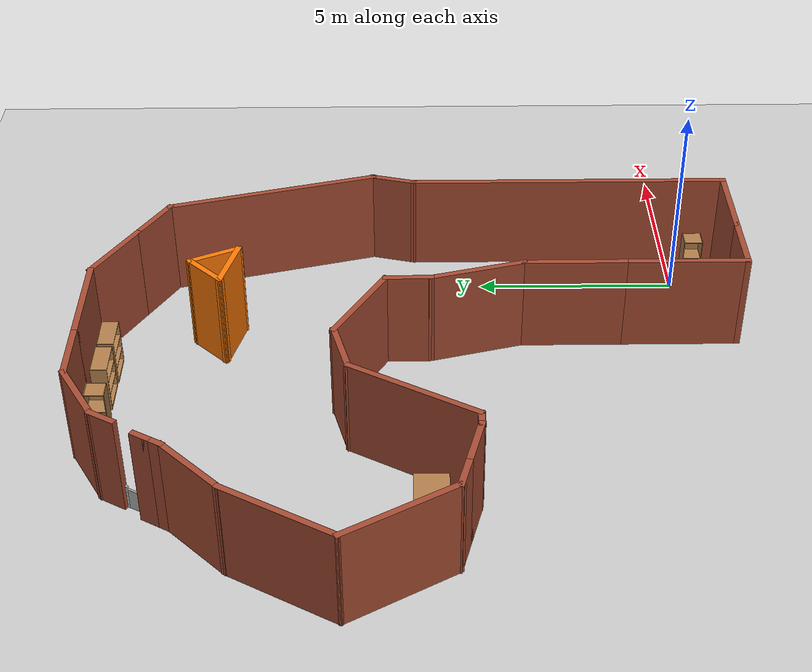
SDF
<sdf version="1.7">
 <world name="default">
  <light name="sun" type="directional">
   <pose>0 0 10 0 -0 0</pose>
   <diffuse>0.8 0.8 0.8 1</diffuse>
   <specular>0.2 0.2 0.2 1</specular>
   <attenuation>
    <range>1000</range>
    <constant>0.9</constant>
    <linear>0.01</linear>
    <quadratic>0.001</quadratic>
   </attenuation>
   <direction>-0.5 0.1 -0.9</direction>
   <spot><inner_angle>0</inner_angle><outer_angle>0</outer_angle><falloff>0</falloff></spot>
  </light>
  <model name="ground_plane">
   <static>1</static>
   <link name="link">
    <collision name="collision">
     <geometry><plane><normal>0 0 1</normal><size>100 100</size></plane></geometry>
     <surface>
      <contact><collide_bitmask>65535</collide_bitmask></contact>
      <friction><ode><mu>100</mu><mu2>50</mu2></ode></friction>
     </surface>
    </collision>
    <visual name="visual">
     <cast_shadows>0</cast_shadows>
     <geometry><plane><normal>0 0 1</normal><size>100 100</size></plane></geometry>
     <material>
      <script><uri>file://media/materials/scripts/gazebo.material</uri><name>Gazebo/Grey</name></script>
     </material>
    </visual>
   </link>
  </model>
  <physics type="ode">
   <real_time_update_rate>1000</real_time_update_rate>
   <max_step_size>0.001</max_step_size>
   <real_time_factor>1</real_time_factor>
   <ode>
    <solver>
     <type>quick</type>
     <iters>150</iters>
     <precon_iters>0</precon_iters>
     <sor>1.4</sor>
     <use_dynamic_moi_rescaling>1</use_dynamic_moi_rescaling>
    </solver>
    <constraints>
     <cfm>1e-05</cfm>
     <erp>0.2</erp>
     <contact_max_correcting_vel>2000</contact_max_correcting_vel>
     <contact_surface_layer>0.01</contact_surface_layer>
    </constraints>
   </ode>
  </physics>
  <scene><ambient>0.4 0.4 0.4 1</ambient><background>0.7 0.7 0.7 1</background><shadows>0</shadows></scene>
  <gravity>0 0 -9.8</gravity>
  <magnetic_field>6e-06 2.3e-05 -4.2e-05</magnetic_field>
  <atmosphere type="adiabatic"/>
  <spherical_coordinates>
   <surface_model>EARTH_WGS84</surface_model>
   <latitude_deg>0</latitude_deg>
   <longitude_deg>0</longitude_deg>
   <elevation>0</elevation>
   <heading_deg>0</heading_deg>
  </spherical_coordinates>
  <model name="questionMark-shaped-room">
   <pose>-5.10684 7.33446 0 0 -0 0</pose>
   <link name="Wall_0">
    <collision name="Wall_0_Collision">
     <geometry><box><size>0.75 0.15 2.5</size></box></geometry>
     <pose>0 0 1.25 0 -0 0</pose>
    </collision>
    <visual name="Wall_0_Visual">
     <pose>0 0 1.25 0 -0 0</pose>
     <geometry><box><size>0.75 0.15 2.5</size></box></geometry>
     <material>
      <script><uri>file://media/materials/scripts/gazebo.material</uri><name>Gazebo/Bricks</name></script>
      <ambient>1 1 1 1</ambient>
     </material>
     <meta><layer>0</layer></meta>
    </visual>
    <pose>-3.00348 6.18761 0 0 -0 1.0472</pose>
   </link>
   <link name="Wall_1">
    <collision name="Wall_1_Collision">
     <geometry><box><size>1.75 0.15 2.5</size></box></geometry>
     <pose>0 0 1.25 0 -0 0</pose>
    </collision>
    <visual name="Wall_1_Visual">
     <pose>0 0 1.25 0 -0 0</pose>
     <geometry><box><size>1.75 0.15 2.5</size></box></geometry>
     <material>
      <script><uri>file://media/materials/scripts/gazebo.material</uri><name>Gazebo/Bricks</name></script>
      <ambient>1 1 1 1</ambient>
     </material>
     <meta><layer>0</layer></meta>
    </visual>
    <pose>-2.16066 6.84742 0 0 -0 0.523599</pose>
   </link>
   <link name="Wall_10">
    <collision name="Wall_10_Collision">
     <geometry><box><size>1.75 0.15 2.5</size></box></geometry>
     <pose>0 0 1.25 0 -0 0</pose>
    </collision>
    <visual name="Wall_10_Visual">
     <pose>0 0 1.25 0 -0 0</pose>
     <geometry><box><size>1.75 0.15 2.5</size></box></geometry>
     <material>
      <script><uri>file://media/materials/scripts/gazebo.material</uri><name>Gazebo/Bricks</name></script>
      <ambient>1 1 1 1</ambient>
     </material>
     <meta><layer>0</layer></meta>
    </visual>
    <pose>3.45342 -8.6828 0 0 -0 3.14159</pose>
   </link>
   <link name="Wall_11">
    <collision name="Wall_11_Collision">
     <geometry><box><size>3 0.15 2.5</size></box></geometry>
     <pose>0 0 1.25 0 -0 0</pose>
    </collision>
    <visual name="Wall_11_Visual">
     <pose>0 0 1.25 0 -0 0</pose>
     <geometry><box><size>3 0.15 2.5</size></box></geometry>
     <material>
      <script><uri>file://media/materials/scripts/gazebo.material</uri><name>Gazebo/Bricks</name></script>
      <ambient>1 1 1 1</ambient>
     </material>
     <meta><layer>0</layer></meta>
    </visual>
    <pose>2.65342 -7.2578 0 0 -0 1.5708</pose>
   </link>
   <link name="Wall_12">
    <collision name="Wall_12_Collision">
     <geometry><box><size>2.75 0.15 2.5</size></box></geometry>
     <pose>0 0 1.25 0 -0 0</pose>
    </collision>
    <visual name="Wall_12_Visual">
     <pose>0 0 1.25 0 -0 0</pose>
     <geometry><box><size>2.75 0.15 2.5</size></box></geometry>
     <material>
      <script><uri>file://media/materials/scripts/gazebo.material</uri><name>Gazebo/Bricks</name></script>
      <ambient>1 1 1 1</ambient>
     </material>
     <meta><layer>0</layer></meta>
    </visual>
    <pose>2.65342 -4.5328 0 0 -0 1.5708</pose>
   </link>
   <link name="Wall_13">
    <collision name="Wall_13_Collision">
     <geometry><box><size>2.5 0.15 2.5</size></box></geometry>
     <pose>0 0 1.25 0 -0 0</pose>
    </collision>
    <visual name="Wall_13_Visual">
     <pose>0 0 1.25 0 -0 0</pose>
     <geometry><box><size>2.5 0.15 2.5</size></box></geometry>
     <material>
      <script><uri>file://media/materials/scripts/gazebo.material</uri><name>Gazebo/Bricks</name></script>
      <ambient>1 1 1 1</ambient>
     </material>
     <meta><layer>0</layer></meta>
    </visual>
    <pose>2.34931 -2.09784 0 0 -0 1.8326</pose>
   </link>
   <link name="Wall_14">
    <collision name="Wall_14_Collision">
     <geometry><box><size>1.25 0.15 2.5</size></box></geometry>
     <pose>0 0 1.25 0 -0 0</pose>
    </collision>
    <visual name="Wall_14_Visual">
     <pose>0 0 1.25 0 -0 0</pose>
     <geometry><box><size>1.25 0.15 2.5</size></box></geometry>
     <material>
      <script><uri>file://media/materials/scripts/gazebo.material</uri><name>Gazebo/Bricks</name></script>
      <ambient>1 1 1 1</ambient>
     </material>
     <meta><layer>0</layer></meta>
    </visual>
    <pose>2.04519 -0.412877 0 0 -0 1.5708</pose>
   </link>
   <link name="Wall_15">
    <collision name="Wall_15_Collision">
     <geometry><box><size>2.5 0.15 2.5</size></box></geometry>
     <pose>0 0 1.25 0 -0 0</pose>
    </collision>
    <visual name="Wall_15_Visual">
     <pose>0 0 1.25 0 -0 0</pose>
     <geometry><box><size>2.5 0.15 2.5</size></box></geometry>
     <material>
      <script><uri>file://media/materials/scripts/gazebo.material</uri><name>Gazebo/Bricks</name></script>
      <ambient>1 1 1 1</ambient>
     </material>
     <meta><layer>0</layer></meta>
    </visual>
    <pose>1.02761 0.724624 0 0 -0 2.61799</pose>
   </link>
   <link name="Wall_16">
    <collision name="Wall_16_Collision">
     <geometry><box><size>1.5 0.15 2.5</size></box></geometry>
     <pose>0 0 1.25 0 -0 0</pose>
    </collision>
    <visual name="Wall_16_Visual">
     <pose>0 0 1.25 0 -0 0</pose>
     <geometry><box><size>1.5 0.15 2.5</size></box></geometry>
     <material>
      <script><uri>file://media/materials/scripts/gazebo.material</uri><name>Gazebo/Bricks</name></script>
      <ambient>1 1 1 1</ambient>
     </material>
     <meta><layer>0</layer></meta>
    </visual>
    <pose>-0.641967 1.13742 0 0 -0 -2.87979</pose>
   </link>
   <link name="Wall_17">
    <collision name="Wall_17_Collision">
     <geometry><box><size>3.5 0.15 2.5</size></box></geometry>
     <pose>0 0 1.25 0 -0 0</pose>
    </collision>
    <visual name="Wall_17_Visual">
     <pose>0 0 1.25 0 -0 0</pose>
     <geometry><box><size>3.5 0.15 2.5</size></box></geometry>
     <material>
      <script><uri>file://media/materials/scripts/gazebo.material</uri><name>Gazebo/Bricks</name></script>
      <ambient>1 1 1 1</ambient>
     </material>
     <meta><layer>0</layer></meta>
    </visual>
    <pose>-2.13147 -0.487875 0 0 -0 -2.0944</pose>
   </link>
   <link name="Wall_18">
    <collision name="Wall_18_Collision">
     <geometry><box><size>0.5 0.15 2.5</size></box></geometry>
     <pose>0 0 1.25 0 -0 0</pose>
    </collision>
    <visual name="Wall_18_Visual">
     <pose>0 0 1.25 0 -0 0</pose>
     <geometry><box><size>0.5 0.15 2.5</size></box></geometry>
     <material>
      <script><uri>file://media/materials/scripts/gazebo.material</uri><name>Gazebo/Bricks</name></script>
      <ambient>1 1 1 1</ambient>
     </material>
     <meta><layer>0</layer></meta>
    </visual>
    <pose>-3.14397 -1.93847 0 0 -0 3.14159</pose>
   </link>
   <link name="Wall_19">
    <collision name="Wall_19_Collision">
     <geometry><box><size>1.25 0.15 2.5</size></box></geometry>
     <pose>0 0 1.25 0 -0 0</pose>
    </collision>
    <visual name="Wall_19_Visual">
     <pose>0 0 1.25 0 -0 0</pose>
     <geometry><box><size>1.25 0.15 2.5</size></box></geometry>
     <material>
      <script><uri>file://media/materials/scripts/gazebo.material</uri><name>Gazebo/Bricks</name></script>
      <ambient>1 1 1 1</ambient>
     </material>
     <meta><layer>0</layer></meta>
    </visual>
    <pose>-3.85023 -1.79612 0 0 -0 2.87979</pose>
   </link>
   <link name="Wall_2">
    <collision name="Wall_2_Collision">
     <geometry><box><size>1.75 0.15 2.5</size></box></geometry>
     <pose>0 0 1.25 0 -0 0</pose>
    </collision>
    <visual name="Wall_2_Visual">
     <pose>0 0 1.25 0 -0 0</pose>
     <geometry><box><size>1.75 0.15 2.5</size></box></geometry>
     <material>
      <script><uri>file://media/materials/scripts/gazebo.material</uri><name>Gazebo/Bricks</name></script>
      <ambient>1 1 1 1</ambient>
     </material>
     <meta><layer>0</layer></meta>
    </visual>
    <pose>-0.667845 7.24742 0 0 -0 0</pose>
   </link>
   <link name="Wall_20">
    <collision name="Wall_20_Collision">
     <geometry><box><size>1 0.15 2.5</size></box></geometry>
     <pose>0 0 1.25 0 -0 0</pose>
    </collision>
    <visual name="Wall_20_Visual">
     <pose>0 0 1.25 0 -0 0</pose>
     <geometry><box><size>1 0.15 2.5</size></box></geometry>
     <material>
      <script><uri>file://media/materials/scripts/gazebo.material</uri><name>Gazebo/Bricks</name></script>
      <ambient>1 1 1 1</ambient>
     </material>
     <meta><layer>0</layer></meta>
    </visual>
    <pose>-4.792 -1.54377 0 0 -0 2.87979</pose>
   </link>
   <link name="Wall_21">
    <collision name="Wall_21_Collision">
     <geometry><box><size>3 0.15 2.5</size></box></geometry>
     <pose>0 0 1.25 0 -0 0</pose>
    </collision>
    <visual name="Wall_21_Visual">
     <pose>0 0 1.25 0 -0 0</pose>
     <geometry><box><size>3 0.15 2.5</size></box></geometry>
     <material>
      <script><uri>file://media/materials/scripts/gazebo.material</uri><name>Gazebo/Bricks</name></script>
      <ambient>1 1 1 1</ambient>
     </material>
     <meta><layer>0</layer></meta>
    </visual>
    <pose>-5.91502 -0.199684 0 0 -0 2.0944</pose>
   </link>
   <link name="Wall_22">
    <collision name="Wall_22_Collision">
     <geometry><box><size>3 0.15 2.5</size></box></geometry>
     <pose>0 0 1.25 0 -0 0</pose>
    </collision>
    <visual name="Wall_22_Visual">
     <pose>0 0 1.25 0 -0 0</pose>
     <geometry><box><size>3 0.15 2.5</size></box></geometry>
     <material>
      <script><uri>file://media/materials/scripts/gazebo.material</uri><name>Gazebo/Bricks</name></script>
      <ambient>1 1 1 1</ambient>
     </material>
     <meta><layer>0</layer></meta>
    </visual>
    <pose>-5.91502 2.26849 0 0 -0 1.0472</pose>
   </link>
   <link name="Wall_23">
    <collision name="Wall_23_Collision">
     <geometry><box><size>2 0.15 2.5</size></box></geometry>
     <pose>0 0 1.25 0 -0 0</pose>
    </collision>
    <visual name="Wall_23_Visual">
     <pose>0 0 1.25 0 -0 0</pose>
     <geometry><box><size>2 0.15 2.5</size></box></geometry>
     <material>
      <script><uri>file://media/materials/scripts/gazebo.material</uri><name>Gazebo/Bricks</name></script>
      <ambient>1 1 1 1</ambient>
     </material>
     <meta><layer>0</layer></meta>
    </visual>
    <pose>-4.54845 4.15665 0 0 -0 0.785398</pose>
   </link>
   <link name="Wall_24">
    <collision name="Wall_24_Collision">
     <geometry><box><size>0.5 0.15 2.5</size></box></geometry>
     <pose>0 0 1.25 0 -0 0</pose>
    </collision>
    <visual name="Wall_24_Visual">
     <pose>0 0 1.25 0 -0 0</pose>
     <geometry><box><size>0.5 0.15 2.5</size></box></geometry>
     <material>
      <script><uri>file://media/materials/scripts/gazebo.material</uri><name>Gazebo/Bricks</name></script>
      <ambient>1 1 1 1</ambient>
     </material>
     <meta><layer>0</layer></meta>
    </visual>
    <pose>-3.80687 4.96228 0 0 -0 1.0472</pose>
   </link>
   <link name="Wall_25">
    <collision name="Wall_25_Collision">
     <geometry><box><size>0.5 0.15 2.5</size></box></geometry>
     <pose>0 0 1.25 0 -0 0</pose>
    </collision>
    <visual name="Wall_25_Visual">
     <pose>0 0 1.25 0 -0 0</pose>
     <geometry><box><size>0.5 0.15 2.5</size></box></geometry>
     <material>
      <script><uri>file://media/materials/scripts/gazebo.material</uri><name>Gazebo/Bricks</name></script>
      <ambient>1 1 1 1</ambient>
     </material>
     <meta><layer>0</layer></meta>
    </visual>
    <pose>-3.63187 5.26539 0 0 -0 1.0472</pose>
   </link>
   <link name="Wall_27">
    <collision name="Wall_27_Collision">
     <geometry><box><size>1.25 0.15 2.5</size></box></geometry>
     <pose>0 0 1.25 0 -0 0</pose>
    </collision>
    <visual name="Wall_27_Visual">
     <pose>0 0 1.25 0 -0 0</pose>
     <geometry><box><size>1.25 0.15 2.5</size></box></geometry>
     <material>
      <script><uri>file://media/materials/scripts/gazebo.material</uri><name>Gazebo/Grey</name></script>
      <ambient>0.996078 0.47451 0.0196078 1</ambient>
     </material>
     <meta><layer>0</layer></meta>
    </visual>
    <pose>2.41986 4.49587 0 0 -0 -2.35619</pose>
   </link>
   <link name="Wall_28">
    <collision name="Wall_28_Collision">
     <geometry><box><size>1.5 0.15 2.5</size></box></geometry>
     <pose>0 0 1.25 0 -0 0</pose>
    </collision>
    <visual name="Wall_28_Visual">
     <pose>0 0 1.25 0 -0 0</pose>
     <geometry><box><size>1.5 0.15 2.5</size></box></geometry>
     <material>
      <script><uri>file://media/materials/scripts/gazebo.material</uri><name>Gazebo/Grey</name></script>
      <ambient>0.996078 0.47451 0.0196078 1</ambient>
     </material>
     <meta><layer>0</layer></meta>
    </visual>
    <pose>2.68295 3.93225 0 0 -0 -0.261799</pose>
   </link>
   <link name="Wall_29">
    <collision name="Wall_29_Collision">
     <geometry><box><size>1.39399 0.15 2.5</size></box></geometry>
     <pose>0 0 1.25 0 -0 0</pose>
    </collision>
    <visual name="Wall_29_Visual">
     <pose>0 0 1.25 0 -0 0</pose>
     <geometry><box><size>1.39399 0.15 2.5</size></box></geometry>
     <material>
      <script><uri>file://media/materials/scripts/gazebo.material</uri><name>Gazebo/Grey</name></script>
      <ambient>0.996078 0.47451 0.0196078 1</ambient>
     </material>
     <meta><layer>0</layer></meta>
    </visual>
    <pose>3.07186 4.32116 0 0 -0 2.00753</pose>
   </link>
   <link name="Wall_3">
    <collision name="Wall_3_Collision">
     <geometry><box><size>2.5 0.15 2.5</size></box></geometry>
     <pose>0 0 1.25 0 -0 0</pose>
    </collision>
    <visual name="Wall_3_Visual">
     <pose>0 0 1.25 0 -0 0</pose>
     <geometry><box><size>2.5 0.15 2.5</size></box></geometry>
     <material>
      <script><uri>file://media/materials/scripts/gazebo.material</uri><name>Gazebo/Bricks</name></script>
      <ambient>1 1 1 1</ambient>
     </material>
     <meta><layer>0</layer></meta>
    </visual>
    <pose>1.30716 7.24742 0 0 -0 0</pose>
   </link>
   <link name="Wall_4">
    <collision name="Wall_4_Collision">
     <geometry><box><size>2 0.15 2.5</size></box></geometry>
     <pose>0 0 1.25 0 -0 0</pose>
    </collision>
    <visual name="Wall_4_Visual">
     <pose>0 0 1.25 0 -0 0</pose>
     <geometry><box><size>2 0.15 2.5</size></box></geometry>
     <material>
      <script><uri>file://media/materials/scripts/gazebo.material</uri><name>Gazebo/Bricks</name></script>
      <ambient>1 1 1 1</ambient>
     </material>
     <meta><layer>0</layer></meta>
    </visual>
    <pose>3.28323 6.78492 0 0 -0 -0.523599</pose>
   </link>
   <link name="Wall_5">
    <collision name="Wall_5_Collision">
     <geometry><box><size>1.5 0.15 2.5</size></box></geometry>
     <pose>0 0 1.25 0 -0 0</pose>
    </collision>
    <visual name="Wall_5_Visual">
     <pose>0 0 1.25 0 -0 0</pose>
     <geometry><box><size>1.5 0.15 2.5</size></box></geometry>
     <material>
      <script><uri>file://media/materials/scripts/gazebo.material</uri><name>Gazebo/Bricks</name></script>
      <ambient>1 1 1 1</ambient>
     </material>
     <meta><layer>0</layer></meta>
    </visual>
    <pose>4.66887 5.98492 0 0 -0 -0.523599</pose>
   </link>
   <link name="Wall_6">
    <collision name="Wall_6_Collision">
     <geometry><box><size>5.5 0.15 2.5</size></box></geometry>
     <pose>0 0 1.25 0 -0 0</pose>
    </collision>
    <visual name="Wall_6_Visual">
     <pose>0 0 1.25 0 -0 0</pose>
     <geometry><box><size>5.5 0.15 2.5</size></box></geometry>
     <material>
      <script><uri>file://media/materials/scripts/gazebo.material</uri><name>Gazebo/Bricks</name></script>
      <ambient>1 1 1 1</ambient>
     </material>
     <meta><layer>0</layer></meta>
    </visual>
    <pose>5.94578 3.06357 0 0 -0 -1.309</pose>
   </link>
   <link name="Wall_7">
    <collision name="Wall_7_Collision">
     <geometry><box><size>1.25 0.15 2.5</size></box></geometry>
     <pose>0 0 1.25 0 -0 0</pose>
    </collision>
    <visual name="Wall_7_Visual">
     <pose>0 0 1.25 0 -0 0</pose>
     <geometry><box><size>1.25 0.15 2.5</size></box></geometry>
     <material>
      <script><uri>file://media/materials/scripts/gazebo.material</uri><name>Gazebo/Bricks</name></script>
      <ambient>1 1 1 1</ambient>
     </material>
     <meta><layer>0</layer></meta>
    </visual>
    <pose>6.49577 -0.051543 0 0 -0 -1.8326</pose>
   </link>
   <link name="Wall_8">
    <collision name="Wall_8_Collision">
     <geometry><box><size>8.25 0.15 2.5</size></box></geometry>
     <pose>0 0 1.25 0 -0 0</pose>
    </collision>
    <visual name="Wall_8_Visual">
     <pose>0 0 1.25 0 -0 0</pose>
     <geometry><box><size>8.25 0.15 2.5</size></box></geometry>
     <material>
      <script><uri>file://media/materials/scripts/gazebo.material</uri><name>Gazebo/Bricks</name></script>
      <ambient>1 1 1 1</ambient>
     </material>
     <meta><layer>0</layer></meta>
    </visual>
    <pose>6.35342 -4.6328 0 0 -0 -1.5708</pose>
   </link>
   <link name="Wall_9">
    <collision name="Wall_9_Collision">
     <geometry><box><size>2.25 0.15 2.5</size></box></geometry>
     <pose>0 0 1.25 0 -0 0</pose>
    </collision>
    <visual name="Wall_9_Visual">
     <pose>0 0 1.25 0 -0 0</pose>
     <geometry><box><size>2.25 0.15 2.5</size></box></geometry>
     <material>
      <script><uri>file://media/materials/scripts/gazebo.material</uri><name>Gazebo/Bricks</name></script>
      <ambient>1 1 1 1</ambient>
     </material>
     <meta><layer>0</layer></meta>
    </visual>
    <pose>5.30342 -8.6828 0 0 -0 3.14159</pose>
   </link>
   <static>1</static>
  </model>
  <model name="table">
   <static>1</static>
   <link name="link">
    <collision name="surface">
     <pose>0 0 1 0 -0 0</pose>
     <geometry><box><size>1.5 0.8 0.03</size></box></geometry>
     <surface><friction><ode><mu>0.6</mu><mu2>0.6</mu2></ode></friction></surface>
    </collision>
    <visual name="visual1">
     <pose>0 0 1 0 -0 0</pose>
     <geometry><box><size>1.5 0.8 0.03</size></box></geometry>
     <material>
      <script><uri>file://media/materials/scripts/gazebo.material</uri><name>Gazebo/Wood</name></script>
     </material>
    </visual>
    <collision name="front_left_leg">
     <pose>0.68 0.38 0.5 0 -0 0</pose>
     <geometry><cylinder><radius>0.02</radius><length>1</length></cylinder></geometry>
    </collision>
    <visual name="front_left_leg">
     <pose>0.68 0.38 0.5 0 -0 0</pose>
     <geometry><cylinder><radius>0.02</radius><length>1</length></cylinder></geometry>
     <material>
      <script><uri>file://media/materials/scripts/gazebo.material</uri><name>Gazebo/Grey</name></script>
     </material>
    </visual>
    <collision name="front_right_leg">
     <pose>0.68 -0.38 0.5 0 -0 0</pose>
     <geometry><cylinder><radius>0.02</radius><length>1</length></cylinder></geometry>
    </collision>
    <visual name="front_right_leg">
     <pose>0.68 -0.38 0.5 0 -0 0</pose>
     <geometry><cylinder><radius>0.02</radius><length>1</length></cylinder></geometry>
     <material>
      <script><uri>file://media/materials/scripts/gazebo.material</uri><name>Gazebo/Grey</name></script>
     </material>
    </visual>
    <collision name="back_right_leg">
     <pose>-0.68 -0.38 0.5 0 -0 0</pose>
     <geometry><cylinder><radius>0.02</radius><length>1</length></cylinder></geometry>
    </collision>
    <visual name="back_right_leg">
     <pose>-0.68 -0.38 0.5 0 -0 0</pose>
     <geometry><cylinder><radius>0.02</radius><length>1</length></cylinder></geometry>
     <material>
      <script><uri>file://media/materials/scripts/gazebo.material</uri><name>Gazebo/Grey</name></script>
     </material>
    </visual>
    <collision name="back_left_leg">
     <pose>-0.68 0.38 0.5 0 -0 0</pose>
     <geometry><cylinder><radius>0.02</radius><length>1</length></cylinder></geometry>
    </collision>
    <visual name="back_left_leg">
     <pose>-0.68 0.38 0.5 0 -0 0</pose>
     <geometry><cylinder><radius>0.02</radius><length>1</length></cylinder></geometry>
     <material>
      <script><uri>file://media/materials/scripts/gazebo.material</uri><name>Gazebo/Grey</name></script>
     </material>
    </visual>
   </link>
   <pose>-9.11804 6.46581 0 0 -0 0</pose>
  </model>
  <model name="bookshelf">
   <static>1</static>
   <link name="link">
    <inertial><mass>1</mass></inertial>
    <collision name="back">
     <pose>0 0.005 0.6 0 -0 0</pose>
     <geometry><box><size>0.9 0.01 1.2</size></box></geometry>
    </collision>
    <visual name="visual1">
     <pose>0 0.005 0.6 0 -0 0</pose>
     <geometry><box><size>0.9 0.01 1.2</size></box></geometry>
     <material>
      <script><uri>file://media/materials/scripts/gazebo.material</uri><name>Gazebo/Wood</name></script>
     </material>
    </visual>
    <collision name="left_side">
     <pose>0.45 -0.195 0.6 0 -0 0</pose>
     <geometry><box><size>0.02 0.4 1.2</size></box></geometry>
    </collision>
    <visual name="visual2">
     <pose>0.45 -0.195 0.6 0 -0 0</pose>
     <geometry><box><size>0.02 0.4 1.2</size></box></geometry>
     <material>
      <script><uri>file://media/materials/scripts/gazebo.material</uri><name>Gazebo/Wood</name></script>
     </material>
    </visual>
    <collision name="right_side">
     <pose>-0.45 -0.195 0.6 0 -0 0</pose>
     <geometry><box><size>0.02 0.4 1.2</size></box></geometry>
    </collision>
    <visual name="visual3">
     <pose>-0.45 -0.195 0.6 0 -0 0</pose>
     <geometry><box><size>0.02 0.4 1.2</size></box></geometry>
     <material>
      <script><uri>file://media/materials/scripts/gazebo.material</uri><name>Gazebo/Wood</name></script>
     </material>
    </visual>
    <collision name="bottom">
     <pose>0 -0.195 0.03 0 -0 0</pose>
     <geometry><box><size>0.88 0.4 0.06</size></box></geometry>
    </collision>
    <visual name="visual4">
     <pose>0 -0.195 0.03 0 -0 0</pose>
     <geometry><box><size>0.88 0.4 0.06</size></box></geometry>
     <material>
      <script><uri>file://media/materials/scripts/gazebo.material</uri><name>Gazebo/Wood</name></script>
     </material>
    </visual>
    <collision name="top">
     <pose>0 -0.195 1.19 0 -0 0</pose>
     <geometry><box><size>0.88 0.4 0.02</size></box></geometry>
    </collision>
    <visual name="visual5">
     <pose>0 -0.195 1.19 0 -0 0</pose>
     <geometry><box><size>0.88 0.4 0.02</size></box></geometry>
     <material>
      <script><uri>file://media/materials/scripts/gazebo.material</uri><name>Gazebo/Wood</name></script>
     </material>
    </visual>
    <collision name="low_shelf">
     <pose>0 -0.195 0.43 0 -0 0</pose>
     <geometry><box><size>0.88 0.4 0.02</size></box></geometry>
    </collision>
    <visual name="visual6">
     <pose>0 -0.195 0.43 0 -0 0</pose>
     <geometry><box><size>0.88 0.4 0.02</size></box></geometry>
     <material>
      <script><uri>file://media/materials/scripts/gazebo.material</uri><name>Gazebo/Wood</name></script>
     </material>
    </visual>
    <collision name="high_shelf">
     <pose>0 -0.195 0.8 0 -0 0</pose>
     <geometry><box><size>0.88 0.4 0.02</size></box></geometry>
    </collision>
    <visual name="visual7">
     <pose>0 -0.195 0.8 0 -0 0</pose>
     <geometry><box><size>0.88 0.4 0.02</size></box></geometry>
     <material>
      <script><uri>file://media/materials/scripts/gazebo.material</uri><name>Gazebo/Wood</name></script>
     </material>
    </visual>
   </link>
   <pose>-3.46107 14.3985 0 0 -0 0</pose>
  </model>
  <model name="bookshelf_0">
   <static>1</static>
   <link name="link">
    <inertial><mass>1</mass></inertial>
    <collision name="back">
     <pose>0 0.005 0.6 0 -0 0</pose>
     <geometry><box><size>0.9 0.01 1.2</size></box></geometry>
    </collision>
    <visual name="visual1">
     <pose>0 0.005 0.6 0 -0 0</pose>
     <geometry><box><size>0.9 0.01 1.2</size></box></geometry>
     <material>
      <script><uri>file://media/materials/scripts/gazebo.material</uri><name>Gazebo/Wood</name></script>
     </material>
    </visual>
    <collision name="left_side">
     <pose>0.45 -0.195 0.6 0 -0 0</pose>
     <geometry><box><size>0.02 0.4 1.2</size></box></geometry>
    </collision>
    <visual name="visual2">
     <pose>0.45 -0.195 0.6 0 -0 0</pose>
     <geometry><box><size>0.02 0.4 1.2</size></box></geometry>
     <material>
      <script><uri>file://media/materials/scripts/gazebo.material</uri><name>Gazebo/Wood</name></script>
     </material>
    </visual>
    <collision name="right_side">
     <pose>-0.45 -0.195 0.6 0 -0 0</pose>
     <geometry><box><size>0.02 0.4 1.2</size></box></geometry>
    </collision>
    <visual name="visual3">
     <pose>-0.45 -0.195 0.6 0 -0 0</pose>
     <geometry><box><size>0.02 0.4 1.2</size></box></geometry>
     <material>
      <script><uri>file://media/materials/scripts/gazebo.material</uri><name>Gazebo/Wood</name></script>
     </material>
    </visual>
    <collision name="bottom">
     <pose>0 -0.195 0.03 0 -0 0</pose>
     <geometry><box><size>0.88 0.4 0.06</size></box></geometry>
    </collision>
    <visual name="visual4">
     <pose>0 -0.195 0.03 0 -0 0</pose>
     <geometry><box><size>0.88 0.4 0.06</size></box></geometry>
     <material>
      <script><uri>file://media/materials/scripts/gazebo.material</uri><name>Gazebo/Wood</name></script>
     </material>
    </visual>
    <collision name="top">
     <pose>0 -0.195 1.19 0 -0 0</pose>
     <geometry><box><size>0.88 0.4 0.02</size></box></geometry>
    </collision>
    <visual name="visual5">
     <pose>0 -0.195 1.19 0 -0 0</pose>
     <geometry><box><size>0.88 0.4 0.02</size></box></geometry>
     <material>
      <script><uri>file://media/materials/scripts/gazebo.material</uri><name>Gazebo/Wood</name></script>
     </material>
    </visual>
    <collision name="low_shelf">
     <pose>0 -0.195 0.43 0 -0 0</pose>
     <geometry><box><size>0.88 0.4 0.02</size></box></geometry>
    </collision>
    <visual name="visual6">
     <pose>0 -0.195 0.43 0 -0 0</pose>
     <geometry><box><size>0.88 0.4 0.02</size></box></geometry>
     <material>
      <script><uri>file://media/materials/scripts/gazebo.material</uri><name>Gazebo/Wood</name></script>
     </material>
    </visual>
    <collision name="high_shelf">
     <pose>0 -0.195 0.8 0 -0 0</pose>
     <geometry><box><size>0.88 0.4 0.02</size></box></geometry>
    </collision>
    <visual name="visual7">
     <pose>0 -0.195 0.8 0 -0 0</pose>
     <geometry><box><size>0.88 0.4 0.02</size></box></geometry>
     <material>
      <script><uri>file://media/materials/scripts/gazebo.material</uri><name>Gazebo/Wood</name></script>
     </material>
    </visual>
   </link>
   <pose>-4.45117 14.4141 0 0 -0 0</pose>
  </model>
  <model name="cabinet">
   <static>1</static>
   <link name="cabinet_bottom_plate">
    <inertial>
     <pose>0 0 -1 0 -0 0</pose>
     <inertia><ixx>2.05</ixx><ixy>0</ixy><ixz>0</ixz><iyy>2.05</iyy><iyz>0</iyz><izz>2.05</izz></inertia>
     <mass>25</mass>
    </inertial>
    <collision name="cabinet_bottom_plate_geom">
     <pose>0 0 0.01 0 -0 0</pose>
     <geometry><box><size>0.45 0.45 0.02</size></box></geometry>
    </collision>
    <visual name="cabinet_bottom_plate_geom_visual">
     <pose>0 0 0.01 0 -0 0</pose>
     <geometry><box><size>0.45 0.45 0.02</size></box></geometry>
     <material>
      <script><uri>file://media/materials/scripts/gazebo.material</uri><name>Gazebo/Wood</name></script>
     </material>
    </visual>
    <collision name="cabinet_bottom_plate_geom_cabinet_back_plate">
     <pose>0.235 0 0.51 0 -0 0</pose>
     <geometry><box><size>0.02 0.45 1.02</size></box></geometry>
    </collision>
    <visual name="cabinet_bottom_plate_geom_cabinet_back_plate_visual">
     <pose>0.235 0 0.51 0 -0 0</pose>
     <geometry><box><size>0.02 0.45 1.02</size></box></geometry>
     <material>
      <script><uri>file://media/materials/scripts/gazebo.material</uri><name>Gazebo/Wood</name></script>
     </material>
    </visual>
    <collision name="cabinet_bottom_plate_geom_cabinet_left_plate">
     <pose>0 0.235 0.51 0 -0 0</pose>
     <geometry><box><size>0.45 0.02 1.02</size></box></geometry>
    </collision>
    <visual name="cabinet_bottom_plate_geom_cabinet_left_plate_visual">
     <pose>0 0.235 0.51 0 -0 0</pose>
     <geometry><box><size>0.45 0.02 1.02</size></box></geometry>
     <material>
      <script><uri>file://media/materials/scripts/gazebo.material</uri><name>Gazebo/Wood</name></script>
     </material>
    </visual>
    <collision name="cabinet_bottom_plate_geom_cabinet_middle_plate">
     <pose>0 0 0.51 0 -0 0</pose>
     <geometry><box><size>0.45 0.45 0.02</size></box></geometry>
    </collision>
    <visual name="cabinet_bottom_plate_geom_cabinet_middle_plate_visual">
     <pose>0 0 0.51 0 -0 0</pose>
     <geometry><box><size>0.45 0.45 0.02</size></box></geometry>
     <material>
      <script><uri>file://media/materials/scripts/gazebo.material</uri><name>Gazebo/Wood</name></script>
     </material>
    </visual>
    <collision name="cabinet_bottom_plate_geom_cabinet_right_plate">
     <pose>0 -0.235 0.51 0 -0 0</pose>
     <geometry><box><size>0.45 0.02 1.02</size></box></geometry>
    </collision>
    <visual name="cabinet_bottom_plate_geom_cabinet_right_plate_visual">
     <pose>0 -0.235 0.51 0 -0 0</pose>
     <geometry><box><size>0.45 0.02 1.02</size></box></geometry>
     <material>
      <script><uri>file://media/materials/scripts/gazebo.material</uri><name>Gazebo/Wood</name></script>
     </material>
    </visual>
    <collision name="cabinet_bottom_plate_geom_cabinet_top_plate">
     <pose>0 0 1.01 0 -0 0</pose>
     <geometry><box><size>0.45 0.45 0.02</size></box></geometry>
    </collision>
    <visual name="cabinet_bottom_plate_geom_cabinet_top_plate_visual">
     <pose>0 0 1.01 0 -0 0</pose>
     <geometry><box><size>0.45 0.45 0.02</size></box></geometry>
     <material>
      <script><uri>file://media/materials/scripts/gazebo.material</uri><name>Gazebo/Wood</name></script>
     </material>
    </visual>
   </link>
   <pose>-5.39488 14.2437 0 0 -0 0</pose>
  </model>
  <model name="cabinet_0">
   <static>1</static>
   <link name="cabinet_bottom_plate">
    <inertial>
     <pose>0 0 -1 0 -0 0</pose>
     <inertia><ixx>2.05</ixx><ixy>0</ixy><ixz>0</ixz><iyy>2.05</iyy><iyz>0</iyz><izz>2.05</izz></inertia>
     <mass>25</mass>
    </inertial>
    <collision name="cabinet_bottom_plate_geom">
     <pose>0 0 0.01 0 -0 0</pose>
     <geometry><box><size>0.45 0.45 0.02</size></box></geometry>
    </collision>
    <visual name="cabinet_bottom_plate_geom_visual">
     <pose>0 0 0.01 0 -0 0</pose>
     <geometry><box><size>0.45 0.45 0.02</size></box></geometry>
     <material>
      <script><uri>file://media/materials/scripts/gazebo.material</uri><name>Gazebo/Wood</name></script>
     </material>
    </visual>
    <collision name="cabinet_bottom_plate_geom_cabinet_back_plate">
     <pose>0.235 0 0.51 0 -0 0</pose>
     <geometry><box><size>0.02 0.45 1.02</size></box></geometry>
    </collision>
    <visual name="cabinet_bottom_plate_geom_cabinet_back_plate_visual">
     <pose>0.235 0 0.51 0 -0 0</pose>
     <geometry><box><size>0.02 0.45 1.02</size></box></geometry>
     <material>
      <script><uri>file://media/materials/scripts/gazebo.material</uri><name>Gazebo/Wood</name></script>
     </material>
    </visual>
    <collision name="cabinet_bottom_plate_geom_cabinet_left_plate">
     <pose>0 0.235 0.51 0 -0 0</pose>
     <geometry><box><size>0.45 0.02 1.02</size></box></geometry>
    </collision>
    <visual name="cabinet_bottom_plate_geom_cabinet_left_plate_visual">
     <pose>0 0.235 0.51 0 -0 0</pose>
     <geometry><box><size>0.45 0.02 1.02</size></box></geometry>
     <material>
      <script><uri>file://media/materials/scripts/gazebo.material</uri><name>Gazebo/Wood</name></script>
     </material>
    </visual>
    <collision name="cabinet_bottom_plate_geom_cabinet_middle_plate">
     <pose>0 0 0.51 0 -0 0</pose>
     <geometry><box><size>0.45 0.45 0.02</size></box></geometry>
    </collision>
    <visual name="cabinet_bottom_plate_geom_cabinet_middle_plate_visual">
     <pose>0 0 0.51 0 -0 0</pose>
     <geometry><box><size>0.45 0.45 0.02</size></box></geometry>
     <material>
      <script><uri>file://media/materials/scripts/gazebo.material</uri><name>Gazebo/Wood</name></script>
     </material>
    </visual>
    <collision name="cabinet_bottom_plate_geom_cabinet_right_plate">
     <pose>0 -0.235 0.51 0 -0 0</pose>
     <geometry><box><size>0.45 0.02 1.02</size></box></geometry>
    </collision>
    <visual name="cabinet_bottom_plate_geom_cabinet_right_plate_visual">
     <pose>0 -0.235 0.51 0 -0 0</pose>
     <geometry><box><size>0.45 0.02 1.02</size></box></geometry>
     <material>
      <script><uri>file://media/materials/scripts/gazebo.material</uri><name>Gazebo/Wood</name></script>
     </material>
    </visual>
    <collision name="cabinet_bottom_plate_geom_cabinet_top_plate">
     <pose>0 0 1.01 0 -0 0</pose>
     <geometry><box><size>0.45 0.45 0.02</size></box></geometry>
    </collision>
    <visual name="cabinet_bottom_plate_geom_cabinet_top_plate_visual">
     <pose>0 0 1.01 0 -0 0</pose>
     <geometry><box><size>0.45 0.45 0.02</size></box></geometry>
     <material>
      <script><uri>file://media/materials/scripts/gazebo.material</uri><name>Gazebo/Wood</name></script>
     </material>
    </visual>
   </link>
   <pose>0.72211 -0.63001 0 0 -0 0</pose>
  </model>
  <model name="door-model">
   <link name="door">
    <inertial>
     <mass>20</mass>
     <inertia>
      <ixx>4.53808</ixx>
      <ixy>0</ixy>
      <ixz>0</ixz>
      <iyy>4.54003</iyy>
      <iyz>0</iyz>
      <izz>0.0512722</izz>
     </inertia>
    </inertial>
    <gravity>0</gravity>
    <visual name="visual">
     <geometry><mesh><uri>model://door-model/./Door.dae</uri><scale>0.001 0.001 0.001</scale></mesh></geometry>
    </visual>
    <collision name="collision">
     <geometry><mesh><uri>model://door-model/./Door.dae</uri><scale>0.001 0.001 0.001</scale></mesh></geometry>
     <surface>
      <friction>
       <ode><mu>1</mu><mu2>1</mu2><fdir1>0 0 0</fdir1><slip1>0</slip1><slip2>0</slip2></ode>
       <torsional>
        <coefficient>1</coefficient>
        <patch_radius>0</patch_radius>
        <surface_radius>0</surface_radius>
        <use_patch_radius>1</use_patch_radius>
        <ode><slip>0</slip></ode>
       </torsional>
      </friction>
      <bounce><restitution_coefficient>0</restitution_coefficient><threshold>1e+06</threshold></bounce>
      <contact>
       <collide_without_contact>0</collide_without_contact>
       <collide_without_contact_bitmask>1</collide_without_contact_bitmask>
       <collide_bitmask>1</collide_bitmask>
       <ode>
        <soft_cfm>0</soft_cfm>
        <soft_erp>0.2</soft_erp>
        <kp>1e+13</kp>
        <kd>1</kd>
        <max_vel>0.01</max_vel>
        <min_depth>0</min_depth>
       </ode>
       <bullet>
        <split_impulse>1</split_impulse>
        <split_impulse_penetration_threshold>-0.01</split_impulse_penetration_threshold>
        <soft_cfm>0</soft_cfm>
        <soft_erp>0.2</soft_erp>
        <kp>1e+13</kp>
        <kd>1</kd>
       </bullet>
      </contact>
     </surface>
    </collision>
   </link>
   <link name="pole">
    <inertial>
     <mass>100</mass>
     <inertia>
      <ixx>0.001</ixx>
      <ixy>0.001</ixy>
      <ixz>0.001</ixz>
      <iyy>0.001</iyy>
      <iyz>0.001</iyz>
      <izz>0.001</izz>
     </inertia>
    </inertial>
    <pose>-0.02632 0 0.308096 0 -0 0</pose>
    <gravity>0</gravity>
    <kinematic>1</kinematic>
    <visual name="visual">
     <geometry><box><size>0.048276 0.0462 0.625074</size></box></geometry>
     <material>
      <lighting>1</lighting>
      <script><uri>file://media/materials/scripts/gazebo.material</uri><name>Gazebo/White</name></script>
      <ambient>1 1 1 1</ambient>
     </material>
    </visual>
    <collision name="collision">
     <geometry><box><size>0.048 0.046201 0.625074</size></box></geometry>
     <surface>
      <friction>
       <ode><mu>1</mu><mu2>1</mu2><fdir1>0 0 0</fdir1><slip1>0</slip1><slip2>0</slip2></ode>
       <torsional>
        <coefficient>1</coefficient>
        <patch_radius>0</patch_radius>
        <surface_radius>0</surface_radius>
        <use_patch_radius>1</use_patch_radius>
        <ode><slip>0</slip></ode>
       </torsional>
      </friction>
      <bounce><restitution_coefficient>0</restitution_coefficient><threshold>1e+06</threshold></bounce>
      <contact>
       <collide_without_contact>0</collide_without_contact>
       <collide_without_contact_bitmask>1</collide_without_contact_bitmask>
       <collide_bitmask>1</collide_bitmask>
       <ode>
        <soft_cfm>0</soft_cfm>
        <soft_erp>0.2</soft_erp>
        <kp>1e+13</kp>
        <kd>1</kd>
        <max_vel>0.01</max_vel>
        <min_depth>0</min_depth>
       </ode>
       <bullet>
        <split_impulse>1</split_impulse>
        <split_impulse_penetration_threshold>-0.01</split_impulse_penetration_threshold>
        <soft_cfm>0</soft_cfm>
        <soft_erp>0.2</soft_erp>
        <kp>1e+13</kp>
        <kd>1</kd>
       </bullet>
      </contact>
     </surface>
    </collision>
   </link>
   <joint name="hinge" type="revolute">
    <parent>pole</parent>
    <child>door</child>
    <pose>0 0 0.3 0 -0 0</pose>
    <axis>
     <xyz>0 0 1</xyz>
     <limit><lower>-1.74533</lower><upper>1.74533</upper><effort>3900</effort><velocity>0.62</velocity></limit>
     <dynamics>
      <spring_reference>0</spring_reference>
      <spring_stiffness>0</spring_stiffness>
      <damping>0.1</damping>
      <friction>0.1</friction>
     </dynamics>
    </axis>
    <physics>
     <ode><limit><cfm>0</cfm><erp>0.2</erp></limit><suspension><cfm>0</cfm><erp>0.2</erp></suspension></ode>
    </physics>
   </joint>
   <static>0</static>
   <pose>-8.2791 13.1262 0 0 0 -2.07464</pose>
  </model>
 </world>
</sdf>
